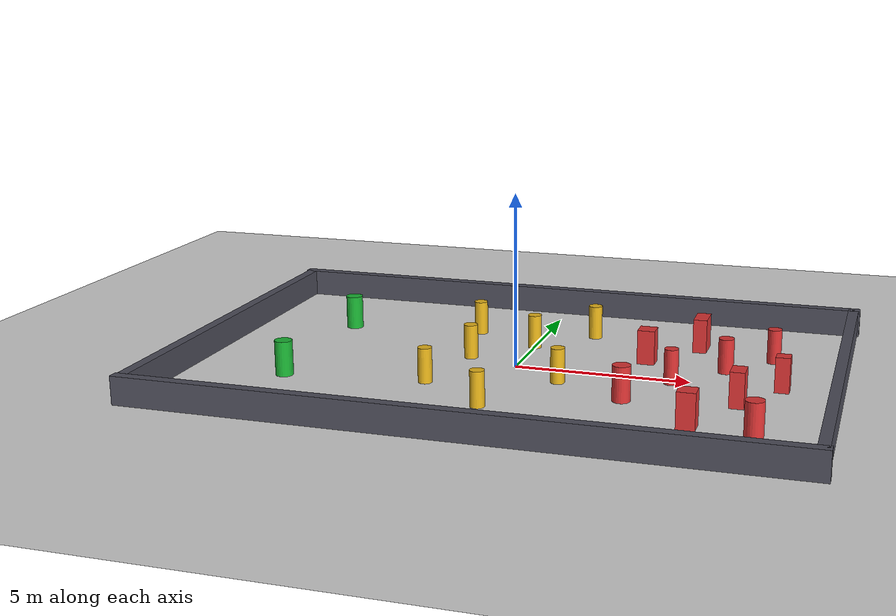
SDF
<?xml version="1.0" ?>
<sdf version="1.8">
  <world name="cluttered_arena">
    <!-- Physics parameters -->
    <physics type="ode">
      <real_time_update_rate>1000.0</real_time_update_rate>
      <max_step_size>0.001</max_step_size>
      <real_time_factor>1.0</real_time_factor>
      <ode>
        <solver>
          <type>quick</type>
          <iters>150</iters>
          <sor>1.4</sor>
        </solver>
        <constraints>
          <cfm>0.00001</cfm>
          <erp>0.2</erp>
        </constraints>
      </ode>
    </physics>

    <!-- Essential Gazebo Sim Systems -->
    <plugin filename="gz-sim-physics-system" name="gz::sim::systems::Physics" />
    <plugin filename="gz-sim-user-commands-system" name="gz::sim::systems::UserCommands" />
    <plugin filename="gz-sim-scene-broadcaster-system" name="gz::sim::systems::SceneBroadcaster" />
    <plugin filename="gz-sim-sensors-system" name="gz::sim::systems::Sensors">
      <render_engine>ogre2</render_engine>
    </plugin>
    <plugin filename="gz-sim-imu-system" name="gz::sim::systems::Imu" />

    <!-- Lighting -->
    <light type="directional" name="sun">
      <cast_shadows>false</cast_shadows>
      <pose>0 0 15 0 0 0</pose>
      <diffuse>0.9 0.9 0.9 1</diffuse>
      <specular>0.3 0.3 0.3 1</specular>
      <attenuation>
        <range>1000</range>
        <constant>0.9</constant>
        <linear>0.01</linear>
        <quadratic>0.001</quadratic>
      </attenuation>
      <direction>-0.5 0.2 -1.0</direction>
    </light>

    <!-- Ground Plane -->
    <model name="ground_plane">
      <static>true</static>
      <link name="link">
        <collision name="collision">
          <geometry>
            <plane>
              <normal>0 0 1</normal>
              <size>50 50</size>
            </plane>
          </geometry>
          <surface>
            <friction>
              <ode>
                <mu>1.0</mu>
                <mu2>1.0</mu2>
              </ode>
            </friction>
          </surface>
        </collision>
        <visual name="visual">
          <geometry>
            <plane>
              <normal>0 0 1</normal>
              <size>50 50</size>
            </plane>
          </geometry>
          <material>
            <ambient>0.82 0.82 0.82 1</ambient>
            <diffuse>0.82 0.82 0.82 1</diffuse>
            <specular>0.1 0.1 0.1 1</specular>
            <emissive>0 0 0 1</emissive>
          </material>
        </visual>
      </link>
    </model>

    <!-- Outer Boundary Walls (18m x 12m) -->
    <!-- North Wall -->
    <model name="wall_north">
      <static>true</static>
      <pose>0 6.0 0.4 0 0 0</pose>
      <link name="link">
        <collision name="col"><geometry><box><size>18.4 0.3 0.8</size></box></geometry></collision>
        <visual name="vis"><geometry><box><size>18.4 0.3 0.8</size></box></geometry>
          <material>
            <ambient>0.3 0.3 0.35 1</ambient>
            <diffuse>0.3 0.3 0.35 1</diffuse>
            <specular>0.2 0.2 0.2 1</specular>
            <emissive>0 0 0 1</emissive>
          </material>
        </visual>
      </link>
    </model>

    <!-- South Wall -->
    <model name="wall_south">
      <static>true</static>
      <pose>0 -6.0 0.4 0 0 0</pose>
      <link name="link">
        <collision name="col"><geometry><box><size>18.4 0.3 0.8</size></box></geometry></collision>
        <visual name="vis"><geometry><box><size>18.4 0.3 0.8</size></box></geometry>
          <material>
            <ambient>0.3 0.3 0.35 1</ambient>
            <diffuse>0.3 0.3 0.35 1</diffuse>
            <specular>0.2 0.2 0.2 1</specular>
            <emissive>0 0 0 1</emissive>
          </material>
        </visual>
      </link>
    </model>

    <!-- East Wall -->
    <model name="wall_east">
      <static>true</static>
      <pose>9.0 0 0.4 0 0 0</pose>
      <link name="link">
        <collision name="col"><geometry><box><size>0.3 12.0 0.8</size></box></geometry></collision>
        <visual name="vis"><geometry><box><size>0.3 12.0 0.8</size></box></geometry>
          <material>
            <ambient>0.3 0.3 0.35 1</ambient>
            <diffuse>0.3 0.3 0.35 1</diffuse>
            <specular>0.2 0.2 0.2 1</specular>
            <emissive>0 0 0 1</emissive>
          </material>
        </visual>
      </link>
    </model>

    <!-- West Wall -->
    <model name="wall_west">
      <static>true</static>
      <pose>-9.0 0 0.4 0 0 0</pose>
      <link name="link">
        <collision name="col"><geometry><box><size>0.3 12.0 0.8</size></box></geometry></collision>
        <visual name="vis"><geometry><box><size>0.3 12.0 0.8</size></box></geometry>
          <material>
            <ambient>0.3 0.3 0.35 1</ambient>
            <diffuse>0.3 0.3 0.35 1</diffuse>
            <specular>0.2 0.2 0.2 1</specular>
            <emissive>0 0 0 1</emissive>
          </material>
        </visual>
      </link>
    </model>

    <!-- ZONE 1: OPEN HIGHWAY (x between -8 and -3) -->
    <model name="pylon_open_1">
      <static>true</static>
      <pose>-6.0 2.5 0.5 0 0 0</pose>
      <link name="link">
        <collision name="col"><geometry><cylinder><radius>0.25</radius><length>1.0</length></cylinder></geometry></collision>
        <visual name="vis"><geometry><cylinder><radius>0.25</radius><length>1.0</length></cylinder></geometry>
          <material>
            <ambient>0.1 0.7 0.2 1</ambient>
            <diffuse>0.1 0.7 0.2 1</diffuse>
            <specular>0.2 0.2 0.2 1</specular>
            <emissive>0 0 0 1</emissive>
          </material>
        </visual>
      </link>
    </model>

    <model name="pylon_open_2">
      <static>true</static>
      <pose>-6.0 -2.5 0.5 0 0 0</pose>
      <link name="link">
        <collision name="col"><geometry><cylinder><radius>0.25</radius><length>1.0</length></cylinder></geometry></collision>
        <visual name="vis"><geometry><cylinder><radius>0.25</radius><length>1.0</length></cylinder></geometry>
          <material>
            <ambient>0.1 0.7 0.2 1</ambient>
            <diffuse>0.1 0.7 0.2 1</diffuse>
            <specular>0.2 0.2 0.2 1</specular>
            <emissive>0 0 0 1</emissive>
          </material>
        </visual>
      </link>
    </model>

    <!-- ZONE 2: MEDIUM CLUTTER / SLALOM ZONE (x between -2 and +2) -->
    <model name="column_med_1">
      <static>true</static>
      <pose>-2.0 3.0 0.5 0 0 0</pose>
      <link name="link">
        <collision name="col"><geometry><cylinder><radius>0.2</radius><length>1.0</length></cylinder></geometry></collision>
        <visual name="vis"><geometry><cylinder><radius>0.2</radius><length>1.0</length></cylinder></geometry>
          <material>
            <ambient>0.9 0.7 0.1 1</ambient>
            <diffuse>0.9 0.7 0.1 1</diffuse>
            <specular>0.2 0.2 0.2 1</specular>
            <emissive>0 0 0 1</emissive>
          </material>
        </visual>
      </link>
    </model>

    <model name="column_med_2">
      <static>true</static>
      <pose>-1.5 0.5 0.5 0 0 0</pose>
      <link name="link">
        <collision name="col"><geometry><cylinder><radius>0.2</radius><length>1.0</length></cylinder></geometry></collision>
        <visual name="vis"><geometry><cylinder><radius>0.2</radius><length>1.0</length></cylinder></geometry>
          <material>
            <ambient>0.9 0.7 0.1 1</ambient>
            <diffuse>0.9 0.7 0.1 1</diffuse>
            <specular>0.2 0.2 0.2 1</specular>
            <emissive>0 0 0 1</emissive>
          </material>
        </visual>
      </link>
    </model>

    <model name="column_med_3">
      <static>true</static>
      <pose>-2.0 -2.0 0.5 0 0 0</pose>
      <link name="link">
        <collision name="col"><geometry><cylinder><radius>0.2</radius><length>1.0</length></cylinder></geometry></collision>
        <visual name="vis"><geometry><cylinder><radius>0.2</radius><length>1.0</length></cylinder></geometry>
          <material>
            <ambient>0.9 0.7 0.1 1</ambient>
            <diffuse>0.9 0.7 0.1 1</diffuse>
            <specular>0.2 0.2 0.2 1</specular>
            <emissive>0 0 0 1</emissive>
          </material>
        </visual>
      </link>
    </model>

    <model name="column_med_4">
      <static>true</static>
      <pose>0.0 2.0 0.5 0 0 0</pose>
      <link name="link">
        <collision name="col"><geometry><cylinder><radius>0.2</radius><length>1.0</length></cylinder></geometry></collision>
        <visual name="vis"><geometry><cylinder><radius>0.2</radius><length>1.0</length></cylinder></geometry>
          <material>
            <ambient>0.9 0.7 0.1 1</ambient>
            <diffuse>0.9 0.7 0.1 1</diffuse>
            <specular>0.2 0.2 0.2 1</specular>
            <emissive>0 0 0 1</emissive>
          </material>
        </visual>
      </link>
    </model>

    <model name="column_med_5">
      <static>true</static>
      <pose>0.0 -3.5 0.5 0 0 0</pose>
      <link name="link">
        <collision name="col"><geometry><cylinder><radius>0.2</radius><length>1.0</length></cylinder></geometry></collision>
        <visual name="vis"><geometry><cylinder><radius>0.2</radius><length>1.0</length></cylinder></geometry>
          <material>
            <ambient>0.9 0.7 0.1 1</ambient>
            <diffuse>0.9 0.7 0.1 1</diffuse>
            <specular>0.2 0.2 0.2 1</specular>
            <emissive>0 0 0 1</emissive>
          </material>
        </visual>
      </link>
    </model>

    <model name="column_med_6">
      <static>true</static>
      <pose>1.5 -1.0 0.5 0 0 0</pose>
      <link name="link">
        <collision name="col"><geometry><cylinder><radius>0.2</radius><length>1.0</length></cylinder></geometry></collision>
        <visual name="vis"><geometry><cylinder><radius>0.2</radius><length>1.0</length></cylinder></geometry>
          <material>
            <ambient>0.9 0.7 0.1 1</ambient>
            <diffuse>0.9 0.7 0.1 1</diffuse>
            <specular>0.2 0.2 0.2 1</specular>
            <emissive>0 0 0 1</emissive>
          </material>
        </visual>
      </link>
    </model>

    <model name="column_med_7">
      <static>true</static>
      <pose>1.5 3.5 0.5 0 0 0</pose>
      <link name="link">
        <collision name="col"><geometry><cylinder><radius>0.2</radius><length>1.0</length></cylinder></geometry></collision>
        <visual name="vis"><geometry><cylinder><radius>0.2</radius><length>1.0</length></cylinder></geometry>
          <material>
            <ambient>0.9 0.7 0.1 1</ambient>
            <diffuse>0.9 0.7 0.1 1</diffuse>
            <specular>0.2 0.2 0.2 1</specular>
            <emissive>0 0 0 1</emissive>
          </material>
        </visual>
      </link>
    </model>

    <!-- ZONE 3: HIGH CLUTTER / DENSE MAZE (x between +3 and +8) -->
    <model name="dense_obs_1">
      <static>true</static>
      <pose>3.5 1.5 0.5 0 0 0</pose>
      <link name="link">
        <collision name="col"><geometry><box><size>0.5 0.5 1.0</size></box></geometry></collision>
        <visual name="vis"><geometry><box><size>0.5 0.5 1.0</size></box></geometry>
          <material>
            <ambient>0.85 0.2 0.2 1</ambient>
            <diffuse>0.85 0.2 0.2 1</diffuse>
            <specular>0.2 0.2 0.2 1</specular>
            <emissive>0 0 0 1</emissive>
          </material>
        </visual>
      </link>
    </model>

    <model name="dense_obs_2">
      <static>true</static>
      <pose>3.5 -2.0 0.5 0 0 0</pose>
      <link name="link">
        <collision name="col"><geometry><cylinder><radius>0.25</radius><length>1.0</length></cylinder></geometry></collision>
        <visual name="vis"><geometry><cylinder><radius>0.25</radius><length>1.0</length></cylinder></geometry>
          <material>
            <ambient>0.85 0.2 0.2 1</ambient>
            <diffuse>0.85 0.2 0.2 1</diffuse>
            <specular>0.2 0.2 0.2 1</specular>
            <emissive>0 0 0 1</emissive>
          </material>
        </visual>
      </link>
    </model>

    <model name="dense_obs_3">
      <static>true</static>
      <pose>4.5 -0.2 0.5 0 0 0</pose>
      <link name="link">
        <collision name="col"><geometry><cylinder><radius>0.2</radius><length>1.0</length></cylinder></geometry></collision>
        <visual name="vis"><geometry><cylinder><radius>0.2</radius><length>1.0</length></cylinder></geometry>
          <material>
            <ambient>0.85 0.2 0.2 1</ambient>
            <diffuse>0.85 0.2 0.2 1</diffuse>
            <specular>0.2 0.2 0.2 1</specular>
            <emissive>0 0 0 1</emissive>
          </material>
        </visual>
      </link>
    </model>

    <model name="dense_obs_4">
      <static>true</static>
      <pose>4.8 3.2 0.5 0 0 0</pose>
      <link name="link">
        <collision name="col"><geometry><box><size>0.4 0.8 1.0</size></box></geometry></collision>
        <visual name="vis"><geometry><box><size>0.4 0.8 1.0</size></box></geometry>
          <material>
            <ambient>0.85 0.2 0.2 1</ambient>
            <diffuse>0.85 0.2 0.2 1</diffuse>
            <specular>0.2 0.2 0.2 1</specular>
            <emissive>0 0 0 1</emissive>
          </material>
        </visual>
      </link>
    </model>

    <model name="dense_obs_5">
      <static>true</static>
      <pose>5.5 -3.5 0.5 0 0 0</pose>
      <link name="link">
        <collision name="col"><geometry><box><size>0.5 0.5 1.0</size></box></geometry></collision>
        <visual name="vis"><geometry><box><size>0.5 0.5 1.0</size></box></geometry>
          <material>
            <ambient>0.85 0.2 0.2 1</ambient>
            <diffuse>0.85 0.2 0.2 1</diffuse>
            <specular>0.2 0.2 0.2 1</specular>
            <emissive>0 0 0 1</emissive>
          </material>
        </visual>
      </link>
    </model>

    <model name="dense_obs_6">
      <static>true</static>
      <pose>5.8 1.2 0.5 0 0 0</pose>
      <link name="link">
        <collision name="col"><geometry><cylinder><radius>0.22</radius><length>1.0</length></cylinder></geometry></collision>
        <visual name="vis"><geometry><cylinder><radius>0.22</radius><length>1.0</length></cylinder></geometry>
          <material>
            <ambient>0.85 0.2 0.2 1</ambient>
            <diffuse>0.85 0.2 0.2 1</diffuse>
            <specular>0.2 0.2 0.2 1</specular>
            <emissive>0 0 0 1</emissive>
          </material>
        </visual>
      </link>
    </model>

    <model name="dense_obs_7">
      <static>true</static>
      <pose>6.5 -1.5 0.5 0 0 0</pose>
      <link name="link">
        <collision name="col"><geometry><box><size>0.4 0.6 1.0</size></box></geometry></collision>
        <visual name="vis"><geometry><box><size>0.4 0.6 1.0</size></box></geometry>
          <material>
            <ambient>0.85 0.2 0.2 1</ambient>
            <diffuse>0.85 0.2 0.2 1</diffuse>
            <specular>0.2 0.2 0.2 1</specular>
            <emissive>0 0 0 1</emissive>
          </material>
        </visual>
      </link>
    </model>

    <model name="dense_obs_8">
      <static>true</static>
      <pose>7.0 2.5 0.5 0 0 0</pose>
      <link name="link">
        <collision name="col"><geometry><cylinder><radius>0.2</radius><length>1.0</length></cylinder></geometry></collision>
        <visual name="vis"><geometry><cylinder><radius>0.2</radius><length>1.0</length></cylinder></geometry>
          <material>
            <ambient>0.85 0.2 0.2 1</ambient>
            <diffuse>0.85 0.2 0.2 1</diffuse>
            <specular>0.2 0.2 0.2 1</specular>
            <emissive>0 0 0 1</emissive>
          </material>
        </visual>
      </link>
    </model>

    <model name="dense_obs_9">
      <static>true</static>
      <pose>7.2 -3.8 0.5 0 0 0</pose>
      <link name="link">
        <collision name="col"><geometry><cylinder><radius>0.25</radius><length>1.0</length></cylinder></geometry></collision>
        <visual name="vis"><geometry><cylinder><radius>0.25</radius><length>1.0</length></cylinder></geometry>
          <material>
            <ambient>0.85 0.2 0.2 1</ambient>
            <diffuse>0.85 0.2 0.2 1</diffuse>
            <specular>0.2 0.2 0.2 1</specular>
            <emissive>0 0 0 1</emissive>
          </material>
        </visual>
      </link>
    </model>

    <model name="dense_obs_10">
      <static>true</static>
      <pose>7.5 0.0 0.5 0 0 0</pose>
      <link name="link">
        <collision name="col"><geometry><box><size>0.4 0.4 1.0</size></box></geometry></collision>
        <visual name="vis"><geometry><box><size>0.4 0.4 1.0</size></box></geometry>
          <material>
            <ambient>0.85 0.2 0.2 1</ambient>
            <diffuse>0.85 0.2 0.2 1</diffuse>
            <specular>0.2 0.2 0.2 1</specular>
            <emissive>0 0 0 1</emissive>
          </material>
        </visual>
      </link>
    </model>

  </world>
</sdf>
